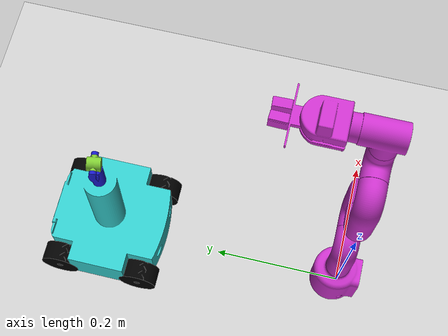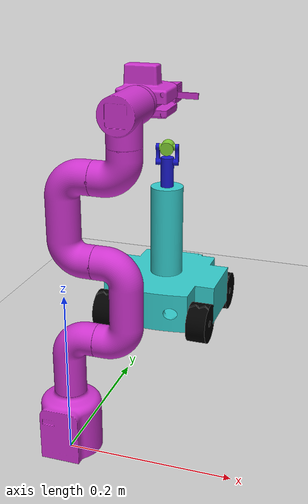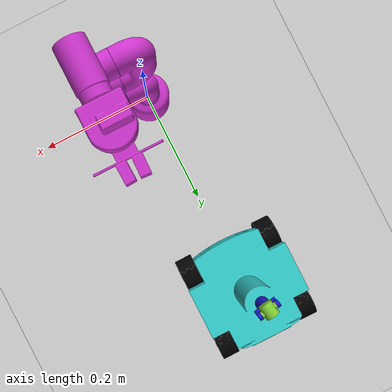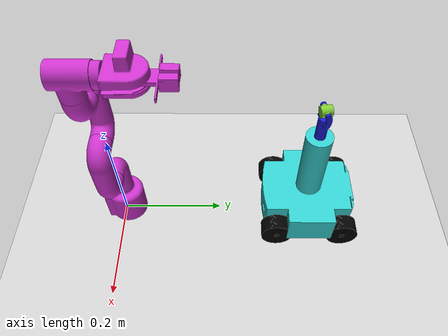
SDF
<sdf version="1.9">
 <world name="car_world">
  <physics name="1ms" type="ignored">
   <max_step_size>0.001</max_step_size>
   <real_time_factor>1</real_time_factor>
   <real_time_update_rate>1000</real_time_update_rate>
  </physics>
  <plugin name="ignition::gazebo::systems::Physics" filename="libignition-gazebo-physics-system.so"/>
  <plugin name="ignition::gazebo::systems::UserCommands" filename="libignition-gazebo-user-commands-system.so"/>
  <plugin name="ignition::gazebo::systems::SceneBroadcaster" filename="libignition-gazebo-scene-broadcaster-system.so"/>
  <gravity>0 0 -9.8</gravity>
  <magnetic_field>6e-06 2.3e-05 -4.2e-05</magnetic_field>
  <atmosphere type="adiabatic"/>
  <scene><ambient>0.4 0.4 0.4 1</ambient><background>0.7 0.7 0.7 1</background><shadows>true</shadows></scene>
  <model name="ground_plane">
   <static>true</static>
   <link name="link">
    <collision name="collision">
     <geometry><plane><normal>0 0 1</normal><size>1 1</size></plane></geometry>
    </collision>
    <visual name="visual">
     <geometry><plane><normal>0 0 1</normal><size>100 100</size></plane></geometry>
     <material>
      <ambient>0.8 0.8 0.8 1</ambient>
      <diffuse>0.8 0.8 0.8 1</diffuse>
      <specular>0.8 0.8 0.8 1</specular>
     </material>
    </visual>
    <inertial>
     <mass>1</mass>
     <inertia><ixx>1</ixx><ixy>0</ixy><ixz>0</ixz><iyy>1</iyy><iyz>0</iyz><izz>1</izz></inertia>
    </inertial>
   </link>
  </model>
  <model name="RaspRover">
   <link name="Frame">
    <pose>-0.200286 -0.192087 -0.025303 0 -0 0</pose>
    <inertial>
     <mass>5.5793799999999996</mass>
     <pose>0.200286 -0.183239 -0.061358 0 -0 0</pose>
     <inertia>
      <ixx>0.028476899999999999</ixx>
      <iyy>0.028655799999999999</iyy>
      <izz>0.019928299999999999</izz>
      <ixy>6.4728499999999998e-14</ixy>
      <iyz>-0.00084195600000000004</iyz>
      <ixz>2.1132899999999999e-14</ixz>
     </inertia>
    </inertial>
    <visual name="Frame_visual">
     <geometry><mesh><uri>file://meshes/Frame.stl</uri><scale>0.001 0.001 0.001</scale></mesh></geometry>
     <material>
      <ambient>0.2 0.8 0.8 1</ambient>
      <diffuse>0.2 0.8 0.8 1</diffuse>
      <specular>0.5 0.5 0.2 1</specular>
     </material>
    </visual>
    <collision name="Frame_collision">
     <geometry><mesh><uri>file://meshes/Frame.stl</uri><scale>0.001 0.001 0.001</scale></mesh></geometry>
    </collision>
   </link>
   <link name="Wheel_BR">
    <pose>0.0554 -0.327561 -0.075098 -3.11659 -0 0</pose>
    <inertial>
     <mass>0.64435100000000001</mass>
     <pose>-0.130401 0.115194 -0.050131 0 -0 0</pose>
     <inertia>
      <ixx>0.00029685699999999998</ixx>
      <iyy>0.00019567099999999999</iyy>
      <izz>0.000197865</izz>
      <ixy>-3.1298799999999999e-09</ixy>
      <iyz>-6.0852500000000003e-07</iyz>
      <ixz>1.5396000000000001e-08</ixz>
     </inertia>
    </inertial>
    <visual name="Wheel_BR_visual">
     <geometry><mesh><uri>file://meshes/Wheel_BR.stl</uri><scale>0.001 0.001 0.001</scale></mesh></geometry>
     <material><ambient>0 0 0 1</ambient><diffuse>0 0 0 1</diffuse><specular>1 1 1 1</specular></material>
    </visual>
    <collision name="Wheel_BR_collision">
     <geometry><mesh><uri>file://meshes/Wheel_BR.stl</uri><scale>0.001 0.001 0.001</scale></mesh></geometry>
    </collision>
   </link>
   <link name="Wheel_BL">
    <pose>-0.0746 -0.327561 -0.075098 -3.11659 -0 0</pose>
    <inertial>
     <mass>0.64435100000000001</mass>
     <pose>0.149599 0.115194 -0.050131 0 -0 0</pose>
     <inertia>
      <ixx>0.00029685699999999998</ixx>
      <iyy>0.00019567099999999999</iyy>
      <izz>0.000197865</izz>
      <ixy>-3.1298799999999999e-09</ixy>
      <iyz>-6.0852500000000003e-07</iyz>
      <ixz>1.5396000000000001e-08</ixz>
     </inertia>
    </inertial>
    <visual name="Wheel_BL_visual">
     <geometry><mesh><uri>file://meshes/Wheel_BL.stl</uri><scale>0.001 0.001 0.001</scale></mesh></geometry>
     <material><ambient>0 0 0 1</ambient><diffuse>0 0 0 1</diffuse><specular>1 1 1 1</specular></material>
    </visual>
    <collision name="Wheel_BL_collision">
     <geometry><mesh><uri>file://meshes/Wheel_BL.stl</uri><scale>0.001 0.001 0.001</scale></mesh></geometry>
    </collision>
   </link>
   <link name="Wheel_FR">
    <pose>0.0554 -0.388302 -0.079847 -3.11659 0 -0</pose>
    <inertial>
     <mass>0.64435100000000001</mass>
     <pose>-0.130401 -0.074806 -0.050131 0 -0 0</pose>
     <inertia>
      <ixx>0.00029685699999999998</ixx>
      <iyy>0.00019567099999999999</iyy>
      <izz>0.000197865</izz>
      <ixy>-3.1298799999999999e-09</ixy>
      <iyz>-6.0852500000000003e-07</iyz>
      <ixz>1.5396000000000001e-08</ixz>
     </inertia>
    </inertial>
    <visual name="Wheel_FR_visual">
     <geometry><mesh><uri>file://meshes/Wheel_FR.stl</uri><scale>0.001 0.001 0.001</scale></mesh></geometry>
     <material><ambient>0 0 0 1</ambient><diffuse>0 0 0 1</diffuse><specular>1 1 1 1</specular></material>
    </visual>
    <collision name="Wheel_FR_collision">
     <geometry><mesh><uri>file://meshes/Wheel_FR.stl</uri><scale>0.001 0.001 0.001</scale></mesh></geometry>
    </collision>
   </link>
   <link name="Wheel_FL">
    <pose>-0.0746 -0.388302 -0.079847 -3.11659 0 0</pose>
    <inertial>
     <mass>0.64435100000000001</mass>
     <pose>0.149599 -0.074806 -0.050131 0 -0 0</pose>
     <inertia>
      <ixx>0.00029685699999999998</ixx>
      <iyy>0.00019567099999999999</iyy>
      <izz>0.000197865</izz>
      <ixy>-3.1298799999999999e-09</ixy>
      <iyz>-6.0852500000000003e-07</iyz>
      <ixz>1.5396000000000001e-08</ixz>
     </inertia>
    </inertial>
    <visual name="Wheel_FL_visual">
     <geometry><mesh><uri>file://meshes/Wheel_FL.stl</uri><scale>0.001 0.001 0.001</scale></mesh></geometry>
     <material><ambient>0 0 0 1</ambient><diffuse>0 0 0 1</diffuse><specular>1 1 1 1</specular></material>
    </visual>
    <collision name="Wheel_FL_collision">
     <geometry><mesh><uri>file://meshes/Wheel_FL.stl</uri><scale>0.001 0.001 0.001</scale></mesh></geometry>
    </collision>
   </link>
   <link name="Camera_Pitch">
    <pose>-0.001644 -0.388728 -0.078219 -3.09413 0 -0.173314</pose>
    <inertial>
     <mass>0.052130599999999999</mass>
     <pose>0 2e-06 0.200062 0 -0 0</pose>
     <inertia>
      <ixx>2.9160199999999998e-06</ixx>
      <iyy>2.8170899999999998e-06</iyy>
      <izz>3.2214600000000002e-06</izz>
      <ixy>7.4819500000000003e-19</ixy>
      <iyz>-1.7698199999999999e-11</iyz>
      <ixz>-1.4093499999999999e-19</ixz>
     </inertia>
    </inertial>
    <visual name="Camera_Pitch_visual">
     <geometry><mesh><uri>file://meshes/Camera_Pitch.stl</uri><scale>0.001 0.001 0.001</scale></mesh></geometry>
     <material>
      <ambient>0.5 0.8 0.2 1</ambient>
      <diffuse>0.5 0.8 0.2 1</diffuse>
      <specular>0.5 0.5 0.5 1</specular>
     </material>
    </visual>
    <collision name="Camera_Pitch_collision">
     <geometry><mesh><uri>file://meshes/Camera_Pitch.stl</uri><scale>0.001 0.001 0.001</scale></mesh></geometry>
    </collision>
   </link>
   <link name="Camera_Yaw">
    <pose>0 -0.379335 -0.077992 3.14159 0 -0.173314</pose>
    <inertial>
     <mass>0.137903</mass>
     <pose>0 0.000169 0.167551 0 -0 0</pose>
     <inertia>
      <ixx>3.8542599999999999e-05</ixx>
      <iyy>4.3745000000000002e-05</iyy>
      <izz>1.1257799999999999e-05</izz>
      <ixy>-9.9009700000000007e-18</ixy>
      <iyz>-5.5707300000000003e-07</iyz>
      <ixz>5.9203800000000002e-18</ixz>
     </inertia>
    </inertial>
    <visual name="Camera_Yaw_visual">
     <geometry><mesh><uri>file://meshes/Camera_Yaw.stl</uri><scale>0.001 0.001 0.001</scale></mesh></geometry>
     <material>
      <ambient>0.1 0.1 0.8 1</ambient>
      <diffuse>0.1 0.1 0.8 1</diffuse>
      <specular>0.5 0.2 0.5 1</specular>
     </material>
    </visual>
    <collision name="Camera_Yaw_collision">
     <geometry><mesh><uri>file://meshes/Camera_Yaw.stl</uri><scale>0.001 0.001 0.001</scale></mesh></geometry>
    </collision>
   </link>
   <joint name="Frame_Revolute-1" type="revolute">
    <pose>-0.1154 -0.07484 -0.05 0 -0 0</pose>
    <parent>Frame</parent>
    <child>Wheel_FR</child>
    <axis>
     <xyz>1 0 0</xyz>
     <limit>
      <lower>-10000000000000000</lower>
      <upper>10000000000000000</upper>
      <effort>20</effort>
      <velocity>20</velocity>
      <stiffness>100000000</stiffness>
      <dissipation>1</dissipation>
     </limit>
     <dynamics>
      <spring_reference>0</spring_reference>
      <spring_stiffness>0</spring_stiffness>
      <damping>0.10000000000000001</damping>
      <friction>0.10000000000000001</friction>
     </dynamics>
    </axis>
   </joint>
   <joint name="Frame_Revolute-2" type="revolute">
    <pose>0.1346 -0.07484 -0.05 0 -0 0</pose>
    <parent>Frame</parent>
    <child>Wheel_FL</child>
    <axis>
     <xyz>1 0 0</xyz>
     <limit>
      <lower>-10000000000000000</lower>
      <upper>10000000000000000</upper>
      <effort>20</effort>
      <velocity>20</velocity>
      <stiffness>100000000</stiffness>
      <dissipation>1</dissipation>
     </limit>
     <dynamics>
      <spring_reference>0</spring_reference>
      <spring_stiffness>0</spring_stiffness>
      <damping>0.10000000000000001</damping>
      <friction>0.10000000000000001</friction>
     </dynamics>
    </axis>
   </joint>
   <joint name="Frame_Revolute-3" type="revolute">
    <pose>0.1346 0.11516 -0.05 0 -0 0</pose>
    <parent>Frame</parent>
    <child>Wheel_BL</child>
    <axis>
     <xyz>1 0 0</xyz>
     <limit>
      <lower>-10000000000000000</lower>
      <upper>10000000000000000</upper>
      <effort>20</effort>
      <velocity>20</velocity>
      <stiffness>100000000</stiffness>
      <dissipation>1</dissipation>
     </limit>
     <dynamics>
      <spring_reference>0</spring_reference>
      <spring_stiffness>0</spring_stiffness>
      <damping>0.10000000000000001</damping>
      <friction>0.10000000000000001</friction>
     </dynamics>
    </axis>
   </joint>
   <joint name="Frame_Revolute-4" type="revolute">
    <pose>-0.1154 0.11516 -0.05 0 -0 0</pose>
    <parent>Frame</parent>
    <child>Wheel_BR</child>
    <axis>
     <xyz>1 0 0</xyz>
     <limit>
      <lower>-10000000000000000</lower>
      <upper>10000000000000000</upper>
      <effort>20</effort>
      <velocity>20</velocity>
      <stiffness>100000000</stiffness>
      <dissipation>1</dissipation>
     </limit>
     <dynamics>
      <spring_reference>0</spring_reference>
      <spring_stiffness>0</spring_stiffness>
      <damping>0.10000000000000001</damping>
      <friction>0.10000000000000001</friction>
     </dynamics>
    </axis>
   </joint>
   <joint name="Frame_Revolute-5" type="revolute">
    <pose>-0 0 0.14 0 -0 0</pose>
    <parent>Frame</parent>
    <child>Camera_Yaw</child>
    <axis>
     <xyz>0 0 1</xyz>
     <limit>
      <lower>-1.5708</lower>
      <upper>1.5708</upper>
      <effort>inf</effort>
      <velocity>inf</velocity>
      <stiffness>100000000</stiffness>
      <dissipation>1</dissipation>
     </limit>
     <dynamics>
      <spring_reference>0</spring_reference>
      <spring_stiffness>0</spring_stiffness>
      <damping>0</damping>
      <friction>0</friction>
     </dynamics>
    </axis>
   </joint>
   <joint name="Camera_Yaw_Revolute-6" type="revolute">
    <pose>0.012 0 0.201 0 -0 0</pose>
    <parent>Camera_Yaw</parent>
    <child>Camera_Pitch</child>
    <axis>
     <xyz>1 0 0</xyz>
     <limit>
      <lower>-1.0471999999999999</lower>
      <upper>0.52359900000000004</upper>
      <effort>inf</effort>
      <velocity>inf</velocity>
      <stiffness>100000000</stiffness>
      <dissipation>1</dissipation>
     </limit>
     <dynamics>
      <spring_reference>0</spring_reference>
      <spring_stiffness>0</spring_stiffness>
      <damping>0</damping>
      <friction>0</friction>
     </dynamics>
    </axis>
   </joint>
   <plugin name="ignition::gazebo::systems::DiffDrive" filename="libignition-gazebo-diff-drive-system.so">
    <left_joint>Frame_Revolute-2</left_joint>
    <left_joint>Frame_Revolute-3</left_joint>
    <right_joint>Frame_Revolute-1</right_joint>
    <right_joint>Frame_Revolute-4</right_joint>
    <wheel_separation>0.25</wheel_separation>
    <wheel_radius>0.04</wheel_radius>
    <topic>/cmd_vel</topic>
   </plugin>
   <pose>-0 -0.000152 0.002139 3.14129 -0 -0</pose>
   <static>false</static>
  </model>
  <model name="joints">
   <link name="shoulder">
    <pose>0 0.032123 0.051938 1.5708 -0 0</pose>
    <inertial>
     <mass>0.89223600000000003</mass>
     <pose>0.006107 0.06982 0.02453 0 -0 0</pose>
     <inertia>
      <ixx>0.00063692900000000005</ixx>
      <iyy>0.00024207800000000001</iyy>
      <izz>0.000714013</izz>
      <ixy>-0.00014307799999999999</ixy>
      <iyz>-1.82782e-13</iyz>
      <ixz>2.1864799999999999e-13</ixz>
     </inertia>
    </inertial>
    <visual name="shoulder_visual">
     <geometry><mesh><uri>file://meshes/shoulder.stl</uri><scale>0.001 0.001 0.001</scale></mesh></geometry>
     <material>
      <ambient>0.8 0.2 0.8 1</ambient>
      <diffuse>0.8 0.2 0.8 1</diffuse>
      <specular>0.5 0.5 0.2 1</specular>
     </material>
    </visual>
    <collision name="shoulder_collision">
     <geometry><mesh><uri>file://meshes/shoulder.stl</uri><scale>0.001 0.001 0.001</scale></mesh></geometry>
    </collision>
   </link>
   <link name="elbow1">
    <pose>0.1 0.032161 0.331933 1.57101 -0 -3.14159</pose>
    <inertial>
     <mass>1.3454699999999999</mass>
     <pose>0.035943 -0.13605 -0.02453 0 -0 0</pose>
     <inertia>
      <ixx>0.0020138700000000001</ixx>
      <iyy>0.00038056400000000001</iyy>
      <izz>0.0021456600000000002</izz>
      <ixy>-1.9530399999999999e-12</ixy>
      <iyz>-3.38013e-16</iyz>
      <ixz>5.2711999999999998e-13</ixz>
     </inertia>
    </inertial>
    <visual name="elbow1_visual">
     <geometry><mesh><uri>file://meshes/elbow1.stl</uri><scale>0.001 0.001 0.001</scale></mesh></geometry>
     <material>
      <ambient>0.8 0.2 0.8 1</ambient>
      <diffuse>0.8 0.2 0.8 1</diffuse>
      <specular>0.5 0.5 0.2 1</specular>
     </material>
    </visual>
    <collision name="elbow1_collision">
     <geometry><mesh><uri>file://meshes/elbow1.stl</uri><scale>0.001 0.001 0.001</scale></mesh></geometry>
    </collision>
   </link>
   <link name="elbow2">
    <pose>0.05 0.031977 0.531952 1.57138 -0 0</pose>
    <inertial>
     <mass>1.3454699999999999</mass>
     <pose>-0.041927 -0.239877 0.02453 0 -0 0</pose>
     <inertia>
      <ixx>0.0020138700000000001</ixx>
      <iyy>0.00038056400000000001</iyy>
      <izz>0.0021456600000000002</izz>
      <ixy>-1.9530399999999999e-12</ixy>
      <iyz>-3.3831300000000002e-16</iyz>
      <ixz>5.2711999999999998e-13</ixz>
     </inertia>
    </inertial>
    <visual name="elbow2_visual">
     <geometry><mesh><uri>file://meshes/elbow2.stl</uri><scale>0.001 0.001 0.001</scale></mesh></geometry>
     <material>
      <ambient>0.8 0.2 0.8 1</ambient>
      <diffuse>0.8 0.2 0.8 1</diffuse>
      <specular>0.5 0.5 0.2 1</specular>
     </material>
    </visual>
    <collision name="elbow2_collision">
     <geometry><mesh><uri>file://meshes/elbow2.stl</uri><scale>0.001 0.001 0.001</scale></mesh></geometry>
    </collision>
   </link>
   <link name="wrist">
    <pose>0.09 0.032542 0.706907 -1.56956 -0 3.14159</pose>
    <inertial>
     <mass>0.56212899999999999</mass>
     <pose>0.027531 0.357129 0.02453 0 -0 0</pose>
     <inertia>
      <ixx>0.00016124100000000001</ixx>
      <iyy>0.00016124100000000001</iyy>
      <izz>0.00021861800000000001</izz>
      <ixy>-5.36332e-05</ixy>
      <iyz>-1.5165100000000001e-13</iyz>
      <ixz>1.5166800000000001e-13</ixz>
     </inertia>
    </inertial>
    <visual name="wrist_visual">
     <geometry><mesh><uri>file://meshes/wrist.stl</uri><scale>0.001 0.001 0.001</scale></mesh></geometry>
     <material>
      <ambient>0.8 0.2 0.8 1</ambient>
      <diffuse>0.8 0.2 0.8 1</diffuse>
      <specular>0.5 0.5 0.2 1</specular>
     </material>
    </visual>
    <collision name="wrist_collision">
     <geometry><mesh><uri>file://meshes/wrist.stl</uri><scale>0.001 0.001 0.001</scale></mesh></geometry>
    </collision>
   </link>
   <link name="endeff">
    <pose>0.149954 0.132664 0.781783 3.14035 0 0.000369</pose>
    <inertial>
     <mass>0.86778999999999995</mass>
     <pose>-0.07787 0.115884 0.374762 0 -0 0</pose>
     <inertia>
      <ixx>0.00048065</ixx>
      <iyy>0.00026170499999999999</iyy>
      <izz>0.00039769399999999998</izz>
      <ixy>2.3478199999999999e-09</ixy>
      <iyz>-3.8289299999999999e-05</iyz>
      <ixz>7.6579099999999993e-09</ixz>
     </inertia>
    </inertial>
    <visual name="endeff_visual">
     <geometry><mesh><uri>file://meshes/endeff.stl</uri><scale>0.001 0.001 0.001</scale></mesh></geometry>
     <material>
      <ambient>0.8 0.2 0.8 1</ambient>
      <diffuse>0.8 0.2 0.8 1</diffuse>
      <specular>0.5 0.5 0.2 1</specular>
     </material>
    </visual>
    <collision name="endeff_collision">
     <geometry><mesh><uri>file://meshes/endeff.stl</uri><scale>0.001 0.001 0.001</scale></mesh></geometry>
    </collision>
   </link>
   <link name="base_link">
    <pose>3e-06 0 0 -0 -0 0.000365</pose>
    <inertial>
     <mass>2.3872100000000001</mass>
     <pose>3.7e-05 0.005654 0.03473 0 -0 0</pose>
     <inertia>
      <ixx>0.0018634599999999999</ixx>
      <iyy>0.0017434</iyy>
      <izz>0.0016067500000000001</izz>
      <ixy>1.4751099999999999e-06</ixy>
      <iyz>-9.4673399999999994e-06</iyz>
      <ixz>1.2099400000000001e-06</ixz>
     </inertia>
    </inertial>
    <visual name="base_link_visual">
     <geometry><mesh><uri>file://meshes/base.stl</uri><scale>0.001 0.001 0.001</scale></mesh></geometry>
     <material>
      <ambient>0.8 0.2 0.8 1</ambient>
      <diffuse>0.8 0.2 0.8 1</diffuse>
      <specular>0.5 0.5 0.2 1</specular>
     </material>
    </visual>
    <collision name="base_link_collision">
     <geometry><mesh><uri>file://meshes/base.stl</uri><scale>0.001 0.001 0.001</scale></mesh></geometry>
    </collision>
   </link>
   <link name="Component46-v1">
    <pose>-0.006306 -0.062218 0.156553 0.001243 0.000121 -3.11882</pose>
    <inertial>
     <mass>0.052696</mass>
     <pose>-0.092798 -0.202844 0.252122 0 -0 0</pose>
     <inertia>
      <ixx>4.6930900000000002e-06</ixx>
      <iyy>2.55113e-06</iyy>
      <izz>3.6803999999999999e-06</izz>
      <ixy>4.35233e-09</ixy>
      <iyz>7.2444499999999997e-11</iyz>
      <ixz>9.0974000000000005e-09</ixz>
     </inertia>
    </inertial>
    <visual name="Component46-v1_visual">
     <geometry><mesh><uri>file://meshes/Component46-v1.stl</uri><scale>0.001 0.001 0.001</scale></mesh></geometry>
     <material>
      <ambient>0.8 0.2 0.8 1</ambient>
      <diffuse>0.8 0.2 0.8 1</diffuse>
      <specular>0.5 0.5 0.2 1</specular>
     </material>
    </visual>
    <collision name="Component46-v1_collision">
     <geometry><mesh><uri>file://meshes/Component46-v1.stl</uri><scale>0.001 0.001 0.001</scale></mesh></geometry>
    </collision>
   </link>
   <link name="Component47-v1">
    <pose>0.0178 -0.058858 0.156552 0.001237 0.000177 3.11956</pose>
    <inertial>
     <mass>0.053148500000000001</mass>
     <pose>-0.040151 -0.202472 0.252169 0 -0 0</pose>
     <inertia>
      <ixx>4.7224099999999997e-06</ixx>
      <iyy>2.5687000000000001e-06</iyy>
      <izz>3.6994000000000001e-06</izz>
      <ixy>-4.3999600000000002e-09</ixy>
      <iyz>4.3483399999999999e-11</iyz>
      <ixz>-5.1396500000000001e-09</ixz>
     </inertia>
    </inertial>
    <visual name="Component47-v1_visual">
     <geometry><mesh><uri>file://meshes/Component47-v1.stl</uri><scale>0.001 0.001 0.001</scale></mesh></geometry>
     <material>
      <ambient>0.8 0.2 0.8 1</ambient>
      <diffuse>0.8 0.2 0.8 1</diffuse>
      <specular>0.5 0.5 0.2 1</specular>
     </material>
    </visual>
    <collision name="Component47-v1_collision">
     <geometry><mesh><uri>file://meshes/Component47-v1.stl</uri><scale>0.001 0.001 0.001</scale></mesh></geometry>
    </collision>
   </link>
   <link name="Component49-v1">
    <pose>0.00512 -0.060658 0.148052 0.00124 0.000149 -3.14123</pose>
    <inertial>
     <mass>0.77099899999999999</mass>
     <pose>-0.065944 -0.146983 0.267342 0 -0 0</pose>
     <inertia>
      <ixx>0.00033165400000000002</ixx>
      <iyy>0.00028393199999999998</iyy>
      <izz>0.00037760799999999998</izz>
      <ixy>-3.0274599999999998e-07</ixy>
      <iyz>-5.0883000000000001e-06</iyz>
      <ixz>-1.90211e-05</ixz>
     </inertia>
    </inertial>
    <visual name="Component49-v1_visual">
     <geometry><mesh><uri>file://meshes/Component49-v1.stl</uri><scale>0.001 0.001 0.001</scale></mesh></geometry>
     <material>
      <ambient>0.8 0.2 0.8 1</ambient>
      <diffuse>0.8 0.2 0.8 1</diffuse>
      <specular>0.5 0.5 0.2 1</specular>
     </material>
    </visual>
    <collision name="Component49-v1_collision">
     <geometry><mesh><uri>file://meshes/Component49-v1.stl</uri><scale>0.001 0.001 0.001</scale></mesh></geometry>
    </collision>
   </link>
   <link name="adapter-v1">
    <pose>0.200484 0.011318 0.68585 3.14035 -0.000149 0.000369</pose>
    <inertial>
     <mass>0.020902</mass>
     <pose>-0.128399 -0.041841 0.273549 0 -0 0</pose>
     <inertia>
      <ixx>3.01336e-06</ixx>
      <iyy>5.36657e-06</iyy>
      <izz>3.0162200000000002e-06</izz>
      <ixy>-2.4006999999999998e-10</ixy>
      <iyz>1.4896499999999999e-09</iyz>
      <ixz>6.5154399999999995e-13</ixz>
     </inertia>
    </inertial>
    <visual name="adapter-v1_visual">
     <geometry><mesh><uri>file://meshes/adapter-v1.stl</uri><scale>0.001 0.001 0.001</scale></mesh></geometry>
     <material>
      <ambient>0.8 0.2 0.8 1</ambient>
      <diffuse>0.8 0.2 0.8 1</diffuse>
      <specular>0.5 0.5 0.2 1</specular>
     </material>
    </visual>
    <collision name="adapter-v1_collision">
     <geometry><mesh><uri>file://meshes/adapter-v1.stl</uri><scale>0.001 0.001 0.001</scale></mesh></geometry>
    </collision>
   </link>
   <joint name="base_link_j1" type="revolute">
    <pose>0 0.023733 0.024531 0 -0 0</pose>
    <parent>base_link</parent>
    <child>shoulder</child>
    <axis>
     <xyz>0 1 0</xyz>
     <limit>
      <lower>-10000000000000000</lower>
      <upper>10000000000000000</upper>
      <effort>inf</effort>
      <velocity>inf</velocity>
      <stiffness>100000000</stiffness>
      <dissipation>1</dissipation>
     </limit>
     <dynamics>
      <spring_reference>0</spring_reference>
      <spring_stiffness>0</spring_stiffness>
      <damping>0</damping>
      <friction>0</friction>
     </dynamics>
    </axis>
   </joint>
   <joint name="shoulder_j2" type="revolute">
    <pose>0.063935 -0.184137 -0.024531 0 -0 0</pose>
    <parent>shoulder</parent>
    <child>elbow1</child>
    <axis>
     <xyz>-1 0 0</xyz>
     <limit>
      <lower>-10000000000000000</lower>
      <upper>10000000000000000</upper>
      <effort>inf</effort>
      <velocity>inf</velocity>
      <stiffness>100000000</stiffness>
      <dissipation>1</dissipation>
     </limit>
     <dynamics>
      <spring_reference>0</spring_reference>
      <spring_stiffness>0</spring_stiffness>
      <damping>0</damping>
      <friction>0</friction>
     </dynamics>
    </axis>
   </joint>
   <joint name="elbow1_j3" type="revolute">
    <pose>-0.013935 -0.287963 0.024531 0 -0 0</pose>
    <parent>elbow1</parent>
    <child>elbow2</child>
    <axis>
     <xyz>-1 0 0</xyz>
     <limit>
      <lower>-10000000000000000</lower>
      <upper>10000000000000000</upper>
      <effort>inf</effort>
      <velocity>inf</velocity>
      <stiffness>100000000</stiffness>
      <dissipation>1</dissipation>
     </limit>
     <dynamics>
      <spring_reference>0</spring_reference>
      <spring_stiffness>0</spring_stiffness>
      <damping>0</damping>
      <friction>0</friction>
     </dynamics>
    </axis>
   </joint>
   <joint name="elbow2_j4" type="revolute">
    <pose>0.053935 0.36679 0.024531 0 -0 0</pose>
    <parent>elbow2</parent>
    <child>wrist</child>
    <axis>
     <xyz>-1 -0 0</xyz>
     <limit>
      <lower>-10000000000000000</lower>
      <upper>10000000000000000</upper>
      <effort>inf</effort>
      <velocity>inf</velocity>
      <stiffness>100000000</stiffness>
      <dissipation>1</dissipation>
     </limit>
     <dynamics>
      <spring_reference>0</spring_reference>
      <spring_stiffness>0</spring_stiffness>
      <damping>0</damping>
      <friction>0</friction>
     </dynamics>
    </axis>
   </joint>
   <joint name="wrist_j5" type="revolute">
    <pose>-0.07787 0.124531 0.405725 0 -0 0</pose>
    <parent>wrist</parent>
    <child>endeff</child>
    <axis>
     <xyz>0 0 -1</xyz>
     <limit>
      <lower>-10000000000000000</lower>
      <upper>10000000000000000</upper>
      <effort>inf</effort>
      <velocity>inf</velocity>
      <stiffness>100000000</stiffness>
      <dissipation>1</dissipation>
     </limit>
     <dynamics>
      <spring_reference>0</spring_reference>
      <spring_stiffness>0</spring_stiffness>
      <damping>0</damping>
      <friction>0</friction>
     </dynamics>
    </axis>
   </joint>
   <joint name="endeff_j6" type="revolute">
    <pose>-0.128396 -0.0436 0.273557 0 -0 0</pose>
    <parent>endeff</parent>
    <child>adapter-v1</child>
    <axis>
     <xyz>0 -1 0</xyz>
     <limit>
      <lower>-10000000000000000</lower>
      <upper>10000000000000000</upper>
      <effort>inf</effort>
      <velocity>inf</velocity>
      <stiffness>100000000</stiffness>
      <dissipation>1</dissipation>
     </limit>
     <dynamics>
      <spring_reference>0</spring_reference>
      <spring_stiffness>0</spring_stiffness>
      <damping>0</damping>
      <friction>0</friction>
     </dynamics>
    </axis>
   </joint>
   <joint name="adapter-v1_Rigid-16" type="fixed">
    <pose>-0.067075 -0.116836 0.2643 0 -0 0</pose>
    <parent>adapter-v1</parent>
    <child>Component49-v1</child>
   </joint>
   <joint name="Component49-v1_Slider-17" type="prismatic">
    <pose>-0.082779 -0.190048 0.25225 0 -0 0</pose>
    <parent>Component49-v1</parent>
    <child>Component46-v1</child>
    <axis>
     <xyz>0.999749 -0.022405 0</xyz>
     <limit>
      <lower>-0.029999999999999999</lower>
      <upper>0</upper>
      <effort>inf</effort>
      <velocity>inf</velocity>
      <stiffness>100000000</stiffness>
      <dissipation>1</dissipation>
     </limit>
     <dynamics>
      <spring_reference>0</spring_reference>
      <spring_stiffness>0</spring_stiffness>
      <damping>0</damping>
      <friction>0</friction>
     </dynamics>
    </axis>
   </joint>
   <joint name="Component49-v1_Slider-18" type="prismatic">
    <pose>-0.050156 -0.189676 0.25225 0 -0 0</pose>
    <parent>Component49-v1</parent>
    <child>Component47-v1</child>
    <axis>
     <xyz>0.999749 0.022401 0</xyz>
     <limit>
      <lower>0</lower>
      <upper>0.029999999999999999</upper>
      <effort>inf</effort>
      <velocity>inf</velocity>
      <stiffness>100000000</stiffness>
      <dissipation>1</dissipation>
     </limit>
     <dynamics>
      <spring_reference>0</spring_reference>
      <spring_stiffness>0</spring_stiffness>
      <damping>0</damping>
      <friction>0</friction>
     </dynamics>
    </axis>
   </joint>
   <pose>-3e-06 0 5e-06 -0 0 -0.000365</pose>
   <static>false</static>
  </model>
  <light name="main_light" type="directional">
   <pose>0 0 10 0 -0 0</pose>
   <intensity>1</intensity>
   <direction>-0.5 0.1 -0.9</direction>
   <diffuse>0.8 0.8 0.8 1</diffuse>
   <specular>0.2 0.2 0.2 1</specular>
   <attenuation>
    <range>1000</range>
    <linear>0.01</linear>
    <constant>0.90000000000000002</constant>
    <quadratic>0.001</quadratic>
   </attenuation>
   <spot><inner_angle>0</inner_angle><outer_angle>0</outer_angle><falloff>0</falloff></spot>
  </light>
 </world>
</sdf>
